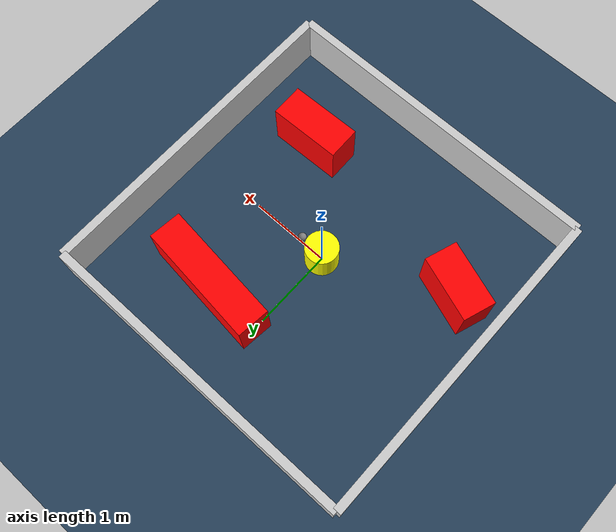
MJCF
<?xml version="1.0" ?>
<mujoco model="generated_environment">
  <option timestep="0.01" integrator="RK4" cone="elliptic"/>
  <default>
    <geom density="1"/>
  </default>
  <asset>
    <texture builtin="gradient" height="3072" rgb1="0.3 0.5 0.7" rgb2="0 0 0" type="skybox" width="512"/>
    <texture builtin="checker" height="300" mark="edge" markrgb="0.8 0.8 0.8" name="groundplane" rgb1="0.2 0.3 0.4" rgb2="0.1 0.2 0.3" type="2d" width="300"/>
    <material name="groundplane" reflectance="0.2" texrepeat="5 5" texture="groundplane" texuniform="true"/>
    <material name="robot" rgba="0.0 1.0 0.0 1"/>
  </asset>
  <worldbody>
    <light dir="0 0 -1" directional="true" pos="0 0 1.5"/>
    <geom condim="4" friction="1.0 0.005 0.001" material="groundplane" name="floor" size="0 0 0.05" type="plane"/>
    <body name="walls">
      <geom name="wall_1" condim="4" pos="-2.0 0.0 0.3" rgba="0.800000011920929 0.800000011920929 0.800000011920929 1.0" size="0.05 2.0 0.3" type="box"/>
      <geom name="wall_2" condim="4" pos="2.0 0.0 0.3" rgba="0.800000011920929 0.800000011920929 0.800000011920929 1.0" size="0.05 2.0 0.3" type="box"/>
      <geom name="wall_3" condim="4" pos="0.0 -2.0 0.3" rgba="0.800000011920929 0.800000011920929 0.800000011920929 1.0" size="2.0 0.05 0.3" type="box"/>
      <geom name="wall_4" condim="4" pos="0.0 2.0 0.3" rgba="0.800000011920929 0.800000011920929 0.800000011920929 1.0" size="2.0 0.05 0.3" type="box"/>
    </body>
    <body name="robot">
      <joint name="joint_x" type="slide" pos="0 0 0" axis="1 0 0"/>
      <joint name="joint_y" type="slide" pos="0 0 0" axis="0 1 0"/>
      <geom name="robot" type="sphere" pos="0.3 0.0 0.2" size="0.05" mass="5." friction="1.0 0.005 0.0001" condim="4" rgba="0.5 0.5 0.5 1.0"/>
      <site name="sensor_ball"/>
    </body>
    <body name="obstacle_movable_1">
      <geom name="obstacle_movable_1" condim="4" pos="0.0 0.0 0.2" euler="0 0 0.0" friction="1.0 0.005 0.001" rgba="1.0 1.0 0.0 1.0" size="0.2 0.2 0.0" type="cylinder" mass="0.1"/>
      <joint type="free"/>
    </body>
    <body name="obstacle_2_static">
      <geom name="obstacle_2_static" condim="4" pos="1.0435863421948102 -1.0445694367540899 0.3" euler="0 0 181.5080899466682" friction="1.0 0.005 0.001" rgba="1 0 0 1" size="0.438420923053065 0.2 0.3" type="box"/>
    </body>
    <body name="obstacle_3_static">
      <geom name="obstacle_3_static" condim="4" pos="-1.4093752628597287 -0.6559380814813289 0.3" euler="0 0 340.99277841908145" friction="1.0 0.005 0.001" rgba="1 0 0 1" size="0.3955408336446353 0.2 0.3" type="box"/>
    </body>
    <body name="obstacle_4_static">
      <geom name="obstacle_4_static" condim="4" pos="0.6653561858687529 1.0953596202427598 0.3" euler="0 0 174.02689652387932" friction="1.0 0.005 0.001" rgba="1 0 0 1" size="0.7551623494138161 0.2 0.3" type="box"/>
    </body>
  </worldbody>
  <actuator>
    <motor name="actuator_x" joint="joint_x" gear="1" ctrlrange="-1 1"/>
    <motor name="actuator_y" joint="joint_y" gear="1" ctrlrange="-1 1"/>
  </actuator>
</mujoco>
